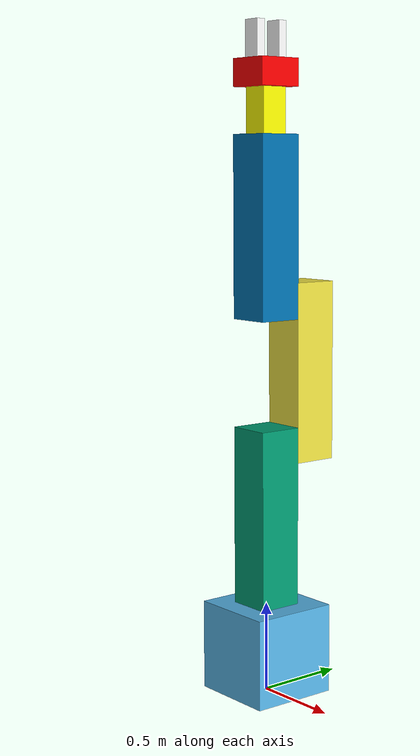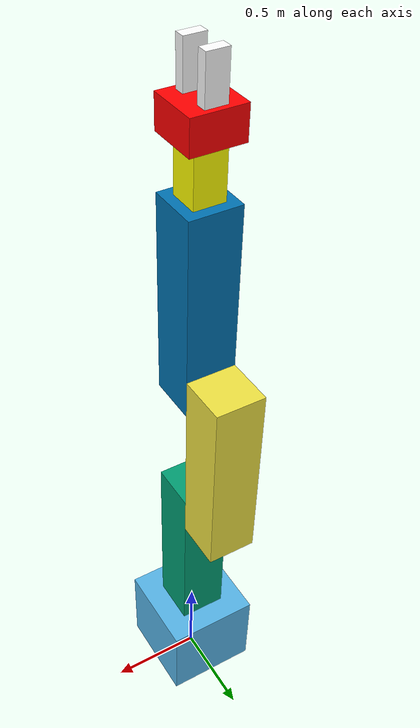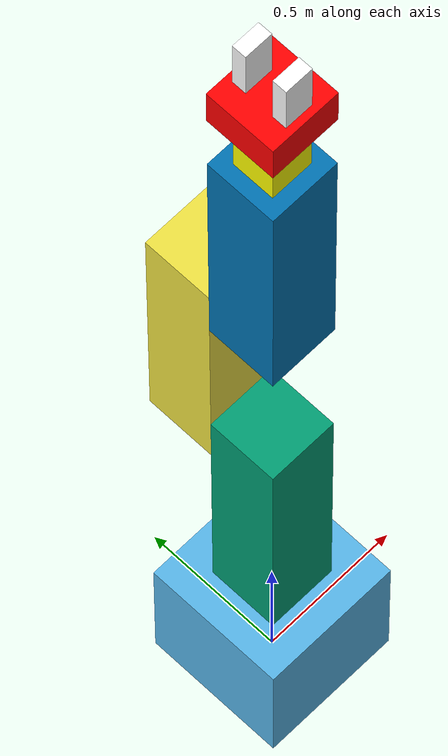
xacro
<robot xmlns:xacro="http://www.ros.org/wiki/xacro" name="robotic_arm">
    <link name="base_link">
    </link>
    <link name="p_0">
    <inertial>
            <origin xyz="0.0 0.0 0.250" rpy="0.0 0.0 0.0"/>
            <mass value="100.0"/>
            <inertia ixx="1.0" ixy="1.0" ixz="1.0" iyy="1.0" iyz="1.0" izz="1.0"/>
        </inertial>
    <visual>
        <origin xyz="0.0 0.0 0.250" rpy="0.0 0.0 0.0"/>
        <geometry>
            <box size="0.50 0.50 0.50"/>
        </geometry>
    </visual>
    <collision>
            <origin xyz="0.0 0.0 0.250" rpy="0.0 0.0 0.0"/>
            <geometry>
                <box size="0.50 0.50 0.50"/>
            </geometry>
        </collision>
    </link>
    <link name="p_1">
        <inertial>
            <origin xyz="0.0 0.0 0.50" rpy="0.0 0.0 0.0"/>
            <mass value="1.0"/>
            <inertia ixx="1.0" ixy="1.0" ixz="1.0" iyy="1.0" iyz="1.0" izz="1.0"/>
        </inertial>
        <visual name="">
            <origin xyz="0.0 0.0 0.50" rpy="0.0 0.0 0.0"/>
            <geometry>
                <box size="0.250 0.250 1.0"/>
            </geometry>
        </visual>
        <collision>
            <origin xyz="0.0 0.0 0.50" rpy="0.0 0.0 0.0"/>
            <geometry>
                <box size="0.250 0.250 1.0"/>
            </geometry>
        </collision>
    </link>
    <link name="p_2">
        <inertial>
            <origin xyz="0.0 0.1250 0.50" rpy="0.0 0.0 0.0"/>
            <mass value="1.0"/>
            <inertia ixx="1.0" ixy="1.0" ixz="1.0" iyy="1.0" iyz="1.0" izz="1.0"/>
        </inertial>
        <visual name="">
            <origin xyz="0.0 0.125 0.50" rpy="0.0 0.0 0.0"/>
            <geometry>
                <box size="0.250 0.250 1.0"/>
            </geometry>
        </visual>
        <collision>
            <origin xyz="0.0 0.1250 0.50" rpy="0.0 0.0 0.0"/>
            <geometry>
                <box size="0.250 0.250 1.0"/>
            </geometry>
        </collision>
    </link>
    <link name="p_3">
        <inertial>
            <origin xyz="0.0 -0.1250 0.50" rpy="0.0 0.0 0.0"/>
            <mass value="1.0"/>
            <inertia ixx="1.0" ixy="1.0" ixz="1.0" iyy="1.0" iyz="1.0" izz="1.0"/>
        </inertial>
        <visual name="">
            <origin xyz="0.0 -0.125 0.50" rpy="0.0 0.0 0.0"/>
            <geometry>
                <box size="0.250 0.250 1.0"/>
            </geometry>
        </visual>
        <collision>
            <origin xyz="0.0 -0.1250 0.50" rpy="0.0 0.0 0.0"/>
            <geometry>
                <box size="0.250 0.250 1.0"/>
            </geometry>
        </collision>
    </link>
    <link name="g_0">
        <inertial>
            <origin xyz="0.0 0.0 0.125" rpy="0.0 0.0 0.0"/>
            <mass value="1.0"/>
            <inertia ixx="1.0" ixy="1.0" ixz="1.0" iyy="1.0" iyz="1.0" izz="1.0"/>
        </inertial>
        <visual name="">
            <origin xyz="0.0 0.0 0.1250" rpy="0.0 0.0 0.0"/>
            <geometry>
                <box size="0.150 0.150 0.250"/>
            </geometry>
            <material name="">
                <color rgba="1.0 1.0 0.0 1.0"/>
                <texture filename=""/>
            </material>
        </visual>
        <collision>
            <origin xyz="0.0 0.0 0.1250" rpy="0.0 0.0 0.0"/>
            <geometry>
                <box size="0.150 0.150 0.250"/>
            </geometry>
        </collision>
    </link>
    <link name="g_01">
        <inertial>
            <origin xyz="0.0 0.0 0.0750" rpy="0.0 0.0 0.0"/>
            <mass value="1.0"/>
            <inertia ixx="0.0" ixy="0.0" ixz="0.0" iyy="0.0" iyz="0.0" izz="0.0"/>
        </inertial>
        <visual name="">
            <origin xyz="0.0 0.0 0.0750" rpy="0.0 0.0 0.0"/>
            <geometry>
                <box size="0.250 0.250 0.150"/>
            </geometry>
            <material name="">
                <color rgba="1.0 0.0 0.0 1.0"/>
                <texture filename=""/>
            </material>
        </visual>
        <collision>
            <origin xyz="0.0 0.0 0.0750" rpy="0.0 0.0 0.0"/>
            <geometry>
                <box size="0.250 0.250 0.150"/>
            </geometry>
        </collision>
    </link>
    <link name="g_r">
        <inertial>
            <origin xyz="0.0 0.0 0.05" rpy="0.0 0.0 0.0"/>
            <mass value="1.0"/>
            <inertia ixx="0.0" ixy="0.0" ixz="0.0" iyy="0.0" iyz="0.0" izz="0.0"/>
        </inertial>
        <visual name="">
            <origin xyz="0.0 0.0 0.05" rpy="0.0 0.0 0.0"/>
            <geometry>
                <box size="0.1 0.05 0.2"/>
            </geometry>
            <material name="">
                <color rgba="1.0 1.0 1.0 1.0"/>
                <texture filename=""/>
            </material>
        </visual>
        <collision>
            <origin xyz="0.0 0.0 0.05" rpy="0.0 0.0 0.0"/>
            <geometry>
                <box size="0.1 0.05 0.2"/>
            </geometry>
        </collision>
    </link>
    <link name="g_l">
        <inertial>
            <origin xyz="0.0 0.0 0.05" rpy="0.0 0.0 0.0"/>
            <mass value="1.0"/>
            <inertia ixx="0.0" ixy="0.0" ixz="0.0" iyy="0.0" iyz="0.0" izz="0.0"/>
        </inertial>
        <visual name="">
            <origin xyz="0.0 0.0 0.05" rpy="0.0 0.0 0.0"/>
            <geometry>
                <box size="0.1 -0.05 0.20"/>
            </geometry>
            <material name="">
                <color rgba="1.0 1.0 1.0 1.0"/>
                <texture filename=""/>
            </material>
        </visual>
        <collision>
            <origin xyz="0.0 0.0 0.05" rpy="0.0 0.0 0.0"/>
            <geometry>
                <box size="0.10 -0.05 0.20"/>
            </geometry>
        </collision>
    </link>

    <joint name="fixed" type="fixed">
        <origin xyz="0.0 0.0 0.0" rpy="0.0 0.0 0.0"/>
        <parent link="base_link"/>
        <child link="p_0"/>
        <axis xyz="0.0 0.0 1.0"/>
        <limit lower="0.0" upper="0.0" effort="0.0" velocity="0.0"/>
    </joint>
    <joint name="base" type="revolute">
        <origin xyz="0.0 0.0 0.50" rpy="0.0 0.0 0.0"/>
        <parent link="p_0"/>
        <child link="p_1"/>
        <axis xyz="0.0 0.0 1.0"/>
        <limit lower="-3.140" upper="3.140" effort="1.0" velocity="1.0"/>
    </joint>
    <joint name="revo" type="revolute">
        <origin xyz="0.0 0.1250 0.8" rpy="0.0 0.0 0.0"/>
        <parent link="p_1"/>
        <child link="p_2"/>
        <axis xyz="0.0 1.0 0.0"/>
        <limit lower="-3.140" upper="3.140" effort="1.0" velocity="1.0"/>
    </joint>
    <joint name="revo2" type="revolute">
        <origin xyz="0.0 0.0 0.8" rpy="0.0 0.0 0.0"/>
        <parent link="p_2"/>
        <child link="p_3"/>
        <axis xyz="0.0 1.0 0.0"/>
        <limit lower="-3.140" upper="3.140" effort="1.0" velocity="1.0"/>
    </joint>
    <joint name="grip_0" type="revolute">
        <origin xyz="0.0 -0.1250 1.0" rpy="0.0 0.0 0.0"/>
        <parent link="p_3"/>
        <child link="g_0"/>
        <axis xyz="0.0 0.0 1.0"/>
        <limit lower="-3.140" upper="3.140" effort="1.0" velocity="1.0"/>
    </joint>
    <joint name="grip_01" type="revolute">
        <origin xyz="0.0 0.0 0.250" rpy="0.0 0.0 0.0"/>
        <parent link="g_0"/>
        <child link="g_01"/>
        <axis xyz="0.0 1.0 0.0"/>
        <limit lower="-0.7850" upper="0.7850" effort="1.0" velocity="1.0"/>
    </joint>
    <joint name="grip_r" type="prismatic">
        <origin xyz="0.0 -0.075 0.20" rpy="0.0 0.0 0.0"/>
        <parent link="g_01"/>
        <child link="g_r"/>
        <axis xyz="0.0 1.0 0.0"/>
        <limit lower="0.0" upper="0.10" effort="1.0" velocity="1.0"/>
    </joint>
    <joint name="grip_l" type="prismatic">
        <origin xyz="0.0 0.075 0.20" rpy="0.0 0.0 0.0"/>
        <parent link="g_01"/>
        <child link="g_l"/>
        <axis xyz="0.0 1.0 0.0"/>
        <limit lower="-0.10" upper="0.0" effort="1.0" velocity="1.0"/>
    </joint>

    <transmission name="base_t">
        <type>transmission_interface/SimpleTransmission</type>
        <joint name="base">
            <hardwareInterface>hardware_interface/PositionJointInterface</hardwareInterface>
        </joint>
        <actuator name="m1">
            <mechanicalReduction>1.0</mechanicalReduction>
            <hardwareInterface>hardware_interface/PositionJointInterface</hardwareInterface>
        </actuator>
    </transmission>
    <transmission name="revo_t">
        <type>transmission_interface/SimpleTransmission</type>
        <joint name="revo">
            <hardwareInterface>hardware_interface/PositionJointInterface</hardwareInterface>
        </joint>
        <actuator name="m2">
            <mechanicalReduction>1.0</mechanicalReduction>
            <hardwareInterface>hardware_interface/PositionJointInterface</hardwareInterface>
        </actuator>
    </transmission>
    <transmission name="revo2_t">
        <type>transmission_interface/SimpleTransmission</type>
        <joint name="revo2">
            <hardwareInterface>hardware_interface/PositionJointInterface</hardwareInterface>
        </joint>
        <actuator name="m3">
            <mechanicalReduction>1.0</mechanicalReduction>
            <hardwareInterface>hardware_interface/PositionJointInterface</hardwareInterface>
        </actuator>
    </transmission>
    <transmission name="grip_0_t">
        <type>transmission_interface/SimpleTransmission</type>
        <joint name="grip_0">
            <hardwareInterface>hardware_interface/PositionJointInterface</hardwareInterface>
        </joint>
        <actuator name="m4">
            <mechanicalReduction>1.0</mechanicalReduction>
            <hardwareInterface>hardware_interface/PositionJointInterface</hardwareInterface>
        </actuator>
    </transmission>
    <transmission name="grip_01_t">
        <type>transmission_interface/SimpleTransmission</type>
        <joint name="grip_01">
            <hardwareInterface>hardware_interface/PositionJointInterface</hardwareInterface>
        </joint>
        <actuator name="m5">
            <mechanicalReduction>1.0</mechanicalReduction>
            <hardwareInterface>hardware_interface/PositionJointInterface</hardwareInterface>
        </actuator>
    </transmission>
    <transmission name="grip_r_t">
        <type>transmission_interface/SimpleTransmission</type>
        <joint name="grip_r">
            <hardwareInterface>hardware_interface/PositionJointInterface</hardwareInterface>
        </joint>
        <actuator name="m6">
            <mechanicalReduction>1.0</mechanicalReduction>
            <hardwareInterface>hardware_interface/PositionJointInterface</hardwareInterface>
        </actuator>
    </transmission>
    <transmission name="grip_l_t">
        <type>transmission_interface/SimpleTransmission</type>
        <joint name="grip_l">
            <hardwareInterface>hardware_interface/PositionJointInterface</hardwareInterface>
        </joint>
        <actuator name="m7">
            <mechanicalReduction>1.0</mechanicalReduction>
            <hardwareInterface>hardware_interface/PositionJointInterface</hardwareInterface>
        </actuator>
    </transmission>

</robot>
